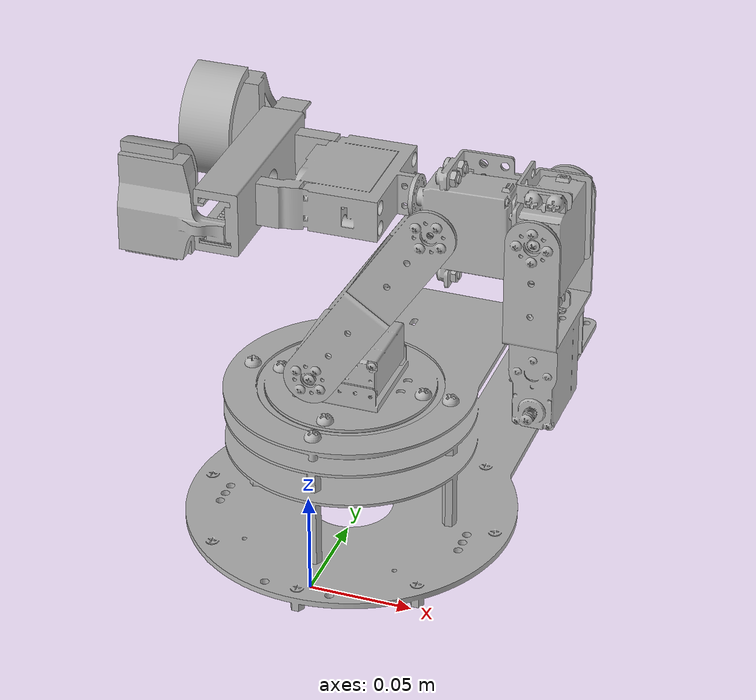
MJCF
<mujoco model="Hiwonder">
  <compiler angle="radian" meshdir="meshes/" />
  <asset>
    <mesh name="base_link" file="base_link.stl" scale="0.001 0.001 0.001" />
    <mesh name="second_link_1" file="second_link_1.stl" scale="0.001 0.001 0.001" />
    <mesh name="sixth_link_1" file="sixth_link_1.stl" scale="0.001 0.001 0.001" />
    <mesh name="fourth_link_1" file="fourth_link_1.stl" scale="0.001 0.001 0.001" />
    <mesh name="fifth_link_1" file="fifth_link_1.stl" scale="0.001 0.001 0.001" />
    <mesh name="third_link_1" file="third_link_1.stl" scale="0.001 0.001 0.001" />
    <mesh name="left_finger_1" file="left_finger_1.stl" scale="0.001 0.001 0.001" />
    <mesh name="right_finger_1" file="right_finger_1.stl" scale="0.001 0.001 0.001" />
    <mesh name="left_silicone_1" file="left_silicone_1.stl" scale="0.001 0.001 0.001" />
    <mesh name="right_ilicone_1" file="right_ilicone_1.stl" scale="0.001 0.001 0.001" />
    <material name="base_link_mat" rgba="0.698 0.698 0.698 1" specular="0" />
    <material name="second_link_1_mat" rgba="0.698 0.698 0.698 1" specular="0" />
    <material name="sixth_link_1_mat" rgba="0.698 0.698 0.698 1" specular="0" />
    <material name="fourth_link_1_mat" rgba="0.698 0.698 0.698 1" specular="0" />
    <material name="fifth_link_1_mat" rgba="0.698 0.698 0.698 1" specular="0" />
    <material name="third_link_1_mat" rgba="0.698 0.698 0.698 1" specular="0" />
    <material name="left_finger_1_mat" rgba="0.698 0.698 0.698 1" specular="0" />
    <material name="right_finger_1_mat" rgba="0.698 0.698 0.698 1" specular="0" />
    <material name="left_silicone_1_mat" rgba="0.698 0.698 0.698 1" specular="0" />
    <material name="right_ilicone_1_mat" rgba="0.698 0.698 0.698 1" specular="0" />
  </asset>

  <worldbody>
    <body name="base_link" pos="0 0 0">
      <inertial pos="0.0000011 0.0926086 0.030564" mass="1.5251097" fullinertia="0.008261 0.002907 0.009107 0 0 0.001105"/>
      <geom pos="0 0 0" group="1" contype="0" conaffinity="0" material="base_link_mat" type="mesh" mesh="base_link" />
      <geom pos="0 0 0" rgba="0.9373 0.2667 0.2667 1" group="3" contype="1" conaffinity="1" type="mesh" mesh="base_link" />
      <body name="second_link_1" pos="0 0.056304 0.060801" quat="0.7071068 0 0 -0.7071068">
        <joint name="Revolute 13" type="hinge" axis="0 0 1" limited="true" range="0 3.1416" actuatorfrclimited="true" actuatorfrcrange="-100 100" damping="0" frictionloss="0"/>
        <inertial pos="0.0015156 0.0000018 0.0248094" mass="0.3790901" fullinertia="0.000161 0.00016 0.000201 0 -0.000006 0"/>
        <geom pos="0 -0.056304 -0.060801" group="1" contype="0" conaffinity="0" material="second_link_1_mat" type="mesh" mesh="second_link_1" />
        <geom pos="0 -0.056304 -0.060801" rgba="0.9373 0.2667 0.2667 1" group="3" contype="1" conaffinity="1" type="mesh" mesh="second_link_1" />
        <body name="third_link_1" pos="0.02722 -0.01 0.035">
          <joint name="Revolute 36" type="hinge" axis="1 0 0" limited="true" range="0 3.141593" actuatorfrclimited="true" actuatorfrcrange="-100 100" damping="0" frictionloss="0"/>
          <inertial pos="-0.0276988 0.0519751 0.0000265" mass="0.1622625" diaginertia="0.000203 0.000102 0.00029"/>
          <geom pos="-0.02722 -0.046304 -0.095801" group="1" contype="0" conaffinity="0" material="third_link_1_mat" type="mesh" mesh="third_link_1" />
          <geom pos="-0.02722 -0.046304 -0.095801" rgba="0.9373 0.2667 0.2667 1" group="3" contype="1" conaffinity="1" type="mesh" mesh="third_link_1" />
          <body name="fourth_link_1" pos="-0.056 0.104 0.000053" quat="0.7071068 0.7071068 0 0">
            <joint name="Revolute 34" type="hinge" axis="-1 0 0" limited="true" range="0 1.57079" actuatorfrclimited="true" actuatorfrcrange="-100 100" damping="0" frictionloss="0"/>
            <inertial pos="0.0294151 0.0235062 0.0000293" mass="0.2923903" fullinertia="0.000208 0.000081 0.000266 -0.000002 0 0"/>
            <geom pos="0.02878 -0.150304 -0.095854" group="1" contype="0" conaffinity="0" material="fourth_link_1_mat" type="mesh" mesh="fourth_link_1" />
            <geom pos="0.02878 -0.150304 -0.095854" rgba="0.9373 0.2667 0.2667 1" group="3" contype="1" conaffinity="1" type="mesh" mesh="fourth_link_1" />
            <body name="fifth_link_1" pos="-0.0014 0.08859 0.00003" quat="0.7071068 0.7071068 0 0">
              <joint name="Revolute 35" type="hinge" axis="-1 0 0" limited="true" range="0 1.570796" actuatorfrclimited="true" actuatorfrcrange="-100 100" damping="0" frictionloss="0"/>
              <inertial pos="0.0248211 0.0199186 0.0099945" mass="0.2938034" fullinertia="0.000201 0.000102 0.000168 0.000006 0.000001 0.000001"/>
              <geom pos="0.03018 -0.238894 -0.095884" group="1" contype="0" conaffinity="0" material="fifth_link_1_mat" type="mesh" mesh="fifth_link_1" />
              <geom pos="0.03018 -0.238894 -0.095884" rgba="0.9373 0.2667 0.2667 1" group="3" contype="1" conaffinity="1" type="mesh" mesh="fifth_link_1" />
              <body name="sixth_link_1" pos="0.025276 0.064287 0.001888" quat="0.7071068 0 0.7071068 0">
                <joint name="Revolute 19" type="hinge" axis="0 1 0" limited="true" range="0 3.141593" actuatorfrclimited="true" actuatorfrcrange="-100 100" damping="0" frictionloss="0"/>
                <inertial pos="0.0001561 0.0462409 0.0051058" mass="0.5747761" fullinertia="0.000539 0.000275 0.000338 -0.000001 -0.000001 -0.000055"/>
                <geom pos="0.004904 -0.303181 -0.097772" group="1" contype="0" conaffinity="0" material="sixth_link_1_mat" type="mesh" mesh="sixth_link_1" />
                <geom pos="0.004904 -0.303181 -0.097772" rgba="0.9373 0.2667 0.2667 1" group="3" contype="1" conaffinity="1" type="mesh" mesh="sixth_link_1" />
                <body name="left_finger_1" pos="-0.097833 0.3934 -0.004965">
                  <joint name="Slider 37" type="slide" axis="-0.00438 0.018937 -0.999811" limited="true" range="-0.01 0.02" actuatorfrclimited="true" actuatorfrcrange="-100 100" damping="0" frictionloss="0"/>
                  <inertial pos="0.1007759 -0.2951399 -0.0241004" mass="0.0169058" fullinertia="0.000007 0.000005 0.000006 0.000001 0 0.000002"/>
                  <geom pos="0.102737 -0.696581 -0.092807" group="1" contype="0" conaffinity="0" material="left_finger_1_mat" type="mesh" mesh="left_finger_1" />
                  <geom pos="0.102737 -0.696581 -0.092807" rgba="0.9373 0.2667 0.2667 1" group="3" contype="1" conaffinity="1" type="mesh" mesh="left_finger_1" />
                  <body name="left_silicone_1" pos="0.09692 -0.283195 -0.028453">
                    <inertial pos="0.0000469 -0.0002034 0.0107649" mass="0.0162585" diaginertia="0.000002 0.000006 0.000005"/>
                    <geom pos="0.005817 -0.413386 -0.064354" group="1" contype="0" conaffinity="0" material="left_silicone_1_mat" type="mesh" mesh="left_silicone_1" />
                    <geom pos="0.005817 -0.413386 -0.064354" rgba="0.9373 0.2667 0.2667 1" group="3" contype="1" conaffinity="1" type="mesh" mesh="left_silicone_1" />
                  </body>
                </body>
                <body name="right_finger_1" pos="-0.097934 0.393923 -0.027659">
                  <joint name="Slider 38" type="slide" axis="-0.00438 0.018937 -0.999811" limited="true" range="-0.02 0.01" actuatorfrclimited="true" actuatorfrcrange="-100 100" damping="0" frictionloss="0"/>
                  <inertial pos="0.0958096 -0.2972024 0.0810796" mass="0.0169058" fullinertia="0.000007 0.000005 0.000006 -0.000001 0 -0.000002"/>
                  <geom pos="0.102838 -0.697104 -0.070113" group="1" contype="0" conaffinity="0" material="right_finger_1_mat" type="mesh" mesh="right_finger_1" />
                  <geom pos="0.102838 -0.697104 -0.070113" rgba="0.9373 0.2667 0.2667 1" group="3" contype="1" conaffinity="1" type="mesh" mesh="right_finger_1" />
                  <body name="right_ilicone_1" pos="0.099765 -0.285463 0.08588">
                    <inertial pos="-0.0000471 0.0002038 -0.0107645" mass="0.0162585" diaginertia="0.000002 0.000006 0.000005"/>
                    <geom pos="0.003073 -0.411641 -0.155993" group="1" contype="0" conaffinity="0" material="right_ilicone_1_mat" type="mesh" mesh="right_ilicone_1" />
                    <geom pos="0.003073 -0.411641 -0.155993" rgba="0.9373 0.2667 0.2667 1" group="3" contype="1" conaffinity="1" type="mesh" mesh="right_ilicone_1" />
                  </body>
                </body>
              </body>
            </body>
          </body>
        </body>
      </body>
    </body>
  </worldbody>
  <actuator>
    <position name="Revolute 13_servo" joint="Revolute 13" kp="50" />
    <position name="Revolute 19_servo" joint="Revolute 19" kp="50" />
    <position name="Revolute 34_servo" joint="Revolute 34" kp="50" />
    <position name="Revolute 35_servo" joint="Revolute 35" kp="50" />
    <position name="Revolute 36_servo" joint="Revolute 36" kp="50" />
    <position name="Slider 37_servo" joint="Slider 37" kp="50" />
    <position name="Slider 38_servo" joint="Slider 38" kp="50" />
  </actuator>
</mujoco>
